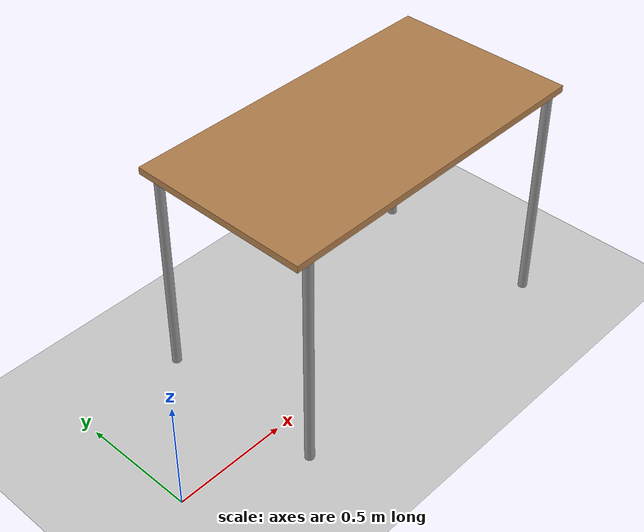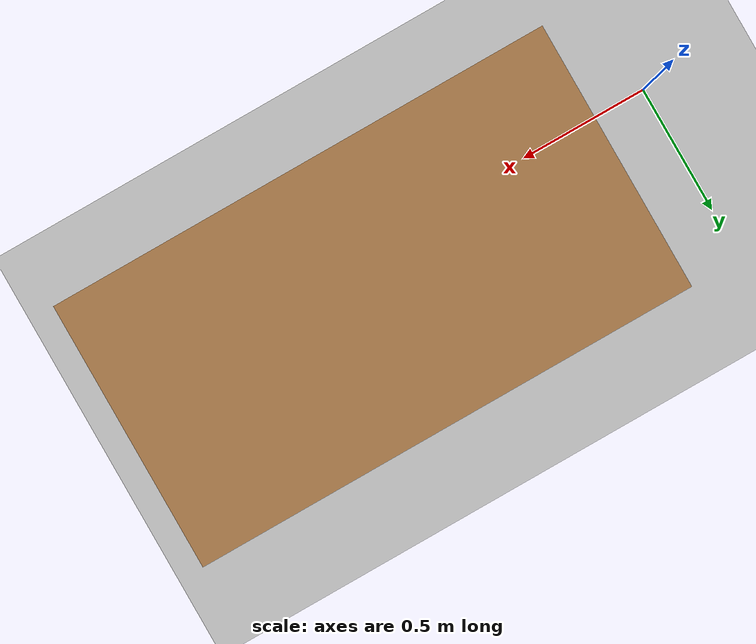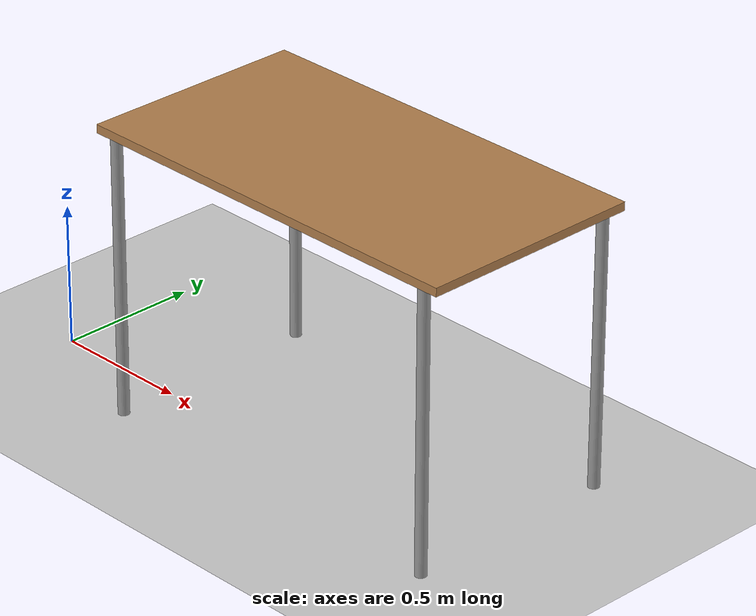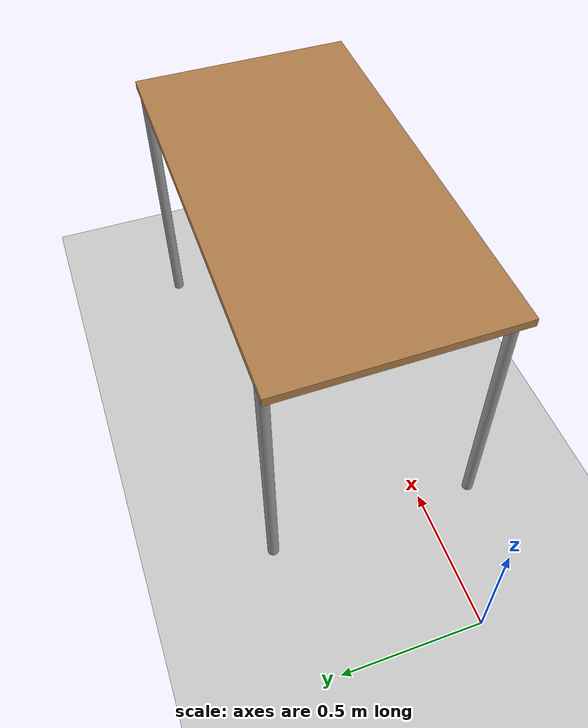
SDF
<sdf version="1.6">
 <world name="default">
  <light name="sun" type="directional">
   <pose>0 0 10 0 -0 0</pose>
   <diffuse>0.8 0.8 0.8 1</diffuse>
   <specular>0.1 0.1 0.1 1</specular>
   <attenuation>
    <range>1000</range>
    <constant>0.9</constant>
    <linear>0.01</linear>
    <quadratic>0.001</quadratic>
   </attenuation>
   <direction>-0.5 0.5 -1</direction>
  </light>
  <model name="ground_plane">
   <static>1</static>
   <link name="link">
    <collision name="collision">
     <geometry><plane><normal>0 0 1</normal><size>100 100</size></plane></geometry>
     <surface><friction><ode><mu>100</mu><mu2>50</mu2></ode></friction></surface>
    </collision>
    <visual name="visual">
     <cast_shadows>0</cast_shadows>
     <geometry><plane><normal>0 0 1</normal><size>100 100</size></plane></geometry>
     <material>
      <script><uri>file://media/materials/scripts/gazebo.material</uri><name>Gazebo/Grey</name></script>
     </material>
    </visual>
   </link>
  </model>
  <gravity>0 0 -9.8</gravity>
  <magnetic_field>6e-06 2.3e-05 -4.2e-05</magnetic_field>
  <atmosphere type="adiabatic"/>
  <physics name="default_physics" default="0" type="ode">
   <max_step_size>0.001</max_step_size>
   <real_time_factor>1</real_time_factor>
   <real_time_update_rate>300</real_time_update_rate>
  </physics>
  <scene><ambient>0.4 0.4 0.4 1</ambient><background>0.7 0.7 0.7 1</background><shadows>1</shadows></scene>
  <spherical_coordinates>
   <surface_model>EARTH_WGS84</surface_model>
   <latitude_deg>0</latitude_deg>
   <longitude_deg>0</longitude_deg>
   <elevation>0</elevation>
   <heading_deg>0</heading_deg>
  </spherical_coordinates>
  <light name="user_spot_light_0" type="spot">
   <pose>-0.005043 -0.002917 1 0 -0 0</pose>
   <diffuse>0.5 0.5 0.5 1</diffuse>
   <specular>0.1 0.1 0.1 1</specular>
   <direction>0 0 -1</direction>
   <attenuation>
    <range>20</range>
    <constant>0.5</constant>
    <linear>0.01</linear>
    <quadratic>0.001</quadratic>
   </attenuation>
   <cast_shadows>0</cast_shadows>
   <spot><inner_angle>0.6</inner_angle><outer_angle>1</outer_angle><falloff>1</falloff></spot>
  </light>
  <light name="user_point_light_0" type="point">
   <pose>-1.06612 0.713566 1 0 -0 0</pose>
   <diffuse>0.5 0.5 0.5 1</diffuse>
   <specular>0.1 0.1 0.1 1</specular>
   <attenuation>
    <range>20</range>
    <constant>0.5</constant>
    <linear>0.01</linear>
    <quadratic>0.001</quadratic>
   </attenuation>
   <cast_shadows>0</cast_shadows>
   <direction>0 0 -1</direction>
  </light>
  <model name="table_0">
   <static>1</static>
   <link name="link">
    <collision name="surface">
     <pose>0 0 1 0 -0 0</pose>
     <geometry><box><size>1.5 0.8 0.03</size></box></geometry>
     <surface><friction><ode><mu>100</mu><mu2>50</mu2></ode></friction></surface>
    </collision>
    <visual name="visual1">
     <pose>0 0 1 0 -0 0</pose>
     <geometry><box><size>1.5 0.8 0.03</size></box></geometry>
     <material>
      <script><uri>file://media/materials/scripts/gazebo.material</uri><name>Gazebo/Wood</name></script>
     </material>
    </visual>
    <collision name="front_left_leg">
     <pose>0.68 0.38 0.5 0 -0 0</pose>
     <geometry><cylinder><radius>0.02</radius><length>1</length></cylinder></geometry>
    </collision>
    <visual name="front_left_leg">
     <pose>0.68 0.38 0.5 0 -0 0</pose>
     <geometry><cylinder><radius>0.02</radius><length>1</length></cylinder></geometry>
     <material>
      <script><uri>file://media/materials/scripts/gazebo.material</uri><name>Gazebo/Grey</name></script>
     </material>
    </visual>
    <collision name="front_right_leg">
     <pose>0.68 -0.38 0.5 0 -0 0</pose>
     <geometry><cylinder><radius>0.02</radius><length>1</length></cylinder></geometry>
    </collision>
    <visual name="front_right_leg">
     <pose>0.68 -0.38 0.5 0 -0 0</pose>
     <geometry><cylinder><radius>0.02</radius><length>1</length></cylinder></geometry>
     <material>
      <script><uri>file://media/materials/scripts/gazebo.material</uri><name>Gazebo/Grey</name></script>
     </material>
    </visual>
    <collision name="back_right_leg">
     <pose>-0.68 -0.38 0.5 0 -0 0</pose>
     <geometry><cylinder><radius>0.02</radius><length>1</length></cylinder></geometry>
    </collision>
    <visual name="back_right_leg">
     <pose>-0.68 -0.38 0.5 0 -0 0</pose>
     <geometry><cylinder><radius>0.02</radius><length>1</length></cylinder></geometry>
     <material>
      <script><uri>file://media/materials/scripts/gazebo.material</uri><name>Gazebo/Grey</name></script>
     </material>
    </visual>
    <collision name="back_left_leg">
     <pose>-0.68 0.38 0.5 0 -0 0</pose>
     <geometry><cylinder><radius>0.02</radius><length>1</length></cylinder></geometry>
    </collision>
    <visual name="back_left_leg">
     <pose>-0.68 0.38 0.5 0 -0 0</pose>
     <geometry><cylinder><radius>0.02</radius><length>1</length></cylinder></geometry>
     <material>
      <script><uri>file://media/materials/scripts/gazebo.material</uri><name>Gazebo/Grey</name></script>
     </material>
    </visual>
   </link>
   <pose>1.16183 0.189267 0 0 -0 0</pose>
  </model>
 </world>
</sdf>
